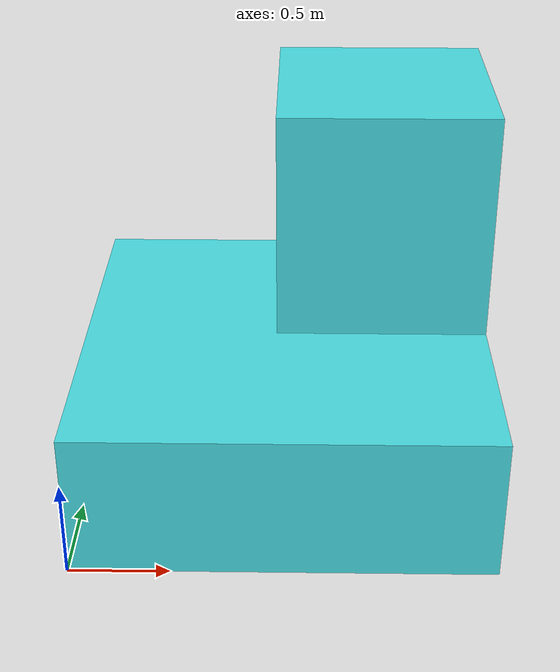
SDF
<?xml version="1.0" ?>
<sdf version="1.5">
  <model name="obstacle_06">
    <static>true</static>
    <link name="link">
      <pose>0 0 0 0 0 0</pose>
      <collision name="collision">
        <geometry>
            <mesh>
              <uri>
                model://obstacle_06/mesh/ostacolo_06.stl
              </uri>
              <scale>
                0.001 0.001 0.001
              </scale>
            </mesh>
        </geometry>
      </collision>
      <visual name="visual">
        <cast_shadows>true</cast_shadows>
        <geometry>
            <mesh>
              <uri>
                model://obstacle_06/mesh/ostacolo_06.stl
              </uri>
              <scale>
                0.001 0.001 0.001
              </scale>
            </mesh>
        </geometry>
        <material> <!-- color cyan -->
          <ambient>0.2941 0.8902 0.9098 1</ambient>
          <diffuse>0.2941 0.8902 0.9098 1</diffuse>
          <specular>0 0 0 0</specular>
          <emissive>0 0 0 1</emissive>
        </material>
      </visual>
    </link>
  </model>
</sdf>
